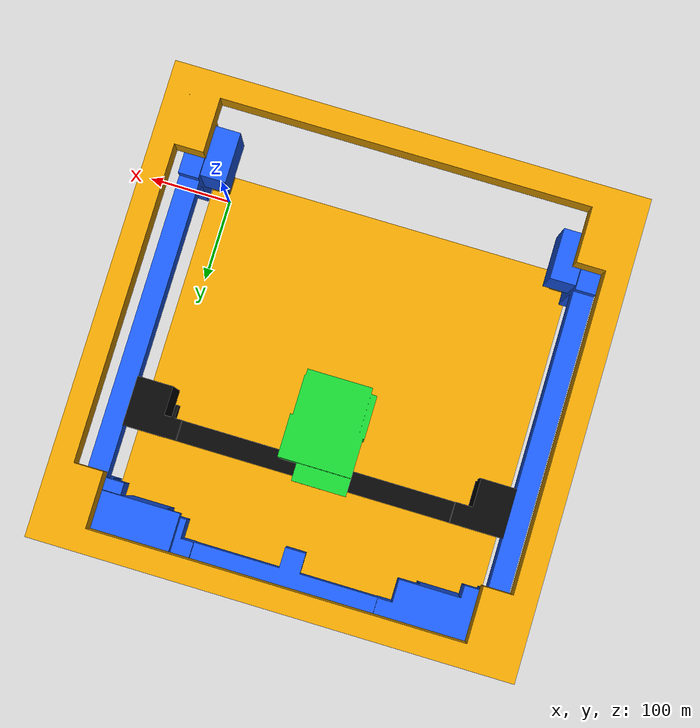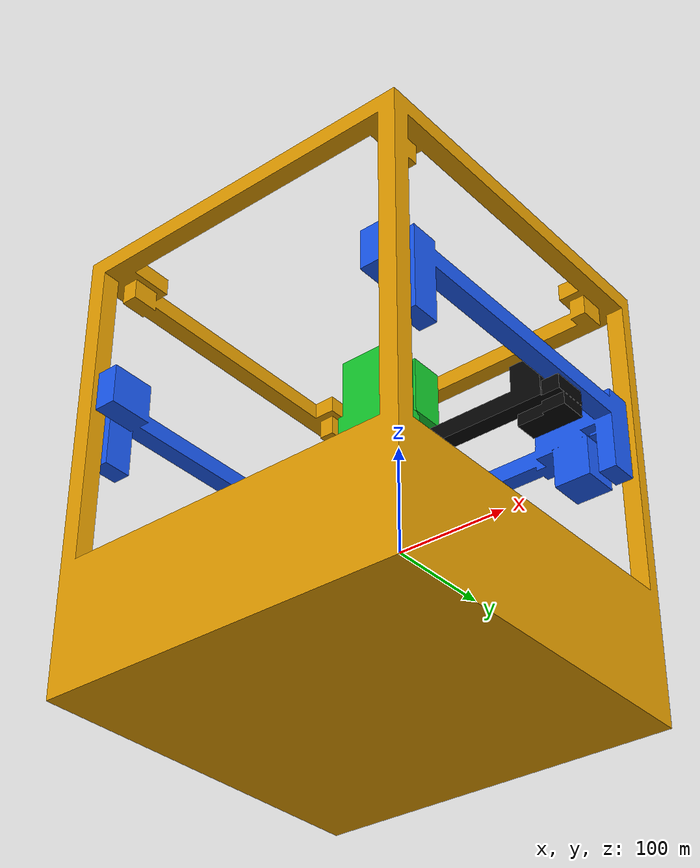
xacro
<?xml version="1.0"?>
<robot xmlns:xacro="http://www.ros.org/wiki/xacro" name="base_link_demo">
  <xacro:include filename="printer_common.urdf.xacro"/>
  <xacro:printer_links/>

  <!-- Temporary search limits only. FCL collision checks will determine actual limits. -->
  <xacro:printer_joint joint_name="base_to_z_gantry" joint_type="prismatic"
    parent="base_link" child="z_gantry_link" xyz="0.01 26.50 267.10"
    axis="0 0 1" lower="-1000" upper="1000"/>
  <xacro:printer_joint joint_name="z_gantry_to_x_beam_black" joint_type="prismatic"
    parent="z_gantry_link" child="x_beam_black_link" xyz="-389.70 228.38 40.56"
    axis="0 1 0" lower="-1000" upper="1000"/>
  <xacro:printer_joint joint_name="x_beam_black_to_toolhead" joint_type="prismatic"
    parent="x_beam_black_link" child="toolhead_link" xyz="218.67 -5.75 47.70"
    axis="1 0 0" lower="-1000" upper="1000"/>
</robot>

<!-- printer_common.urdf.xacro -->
<robot xmlns:xacro="http://www.ros.org/wiki/xacro" name="base_link_demo">

  <!-- Project convention: all geometry and joint coordinates use 1 unit = 1 mm. -->
  <xacro:property name="mesh_root" value="file:///home/wjd/Desktop/temporal_AI_workspace/ros2_ws_stl_demo/src/printer_description/meshes"/>

  <xacro:macro name="printer_links">
    <link name="base_link">
      <visual>
        <origin xyz="0 0 0" rpy="0 0 0"/>
        <geometry><mesh filename="${mesh_root}/base_link.stl" scale="1 1 1"/></geometry>
      </visual>
      <collision>
        <origin xyz="0 0 0" rpy="0 0 0"/>
        <geometry><mesh filename="${mesh_root}/base_link.stl" scale="1 1 1"/></geometry>
      </collision>
    </link>

    <link name="z_gantry_link">
      <visual>
        <origin xyz="0 0 0" rpy="0 0 0"/>
        <geometry><mesh filename="${mesh_root}/z_gantry.stl" scale="1 1 1"/></geometry>
        <material name="z_gantry_blue"><color rgba="0.10 0.35 0.95 1.0"/></material>
      </visual>
      <collision>
        <origin xyz="0 0 0" rpy="0 0 0"/>
        <geometry><mesh filename="${mesh_root}/z_gantry.stl" scale="1 1 1"/></geometry>
      </collision>
    </link>

    <link name="x_beam_black_link">
      <visual>
        <origin xyz="0 0 0" rpy="0 0 0"/>
        <geometry><mesh filename="${mesh_root}/x_beam.stl" scale="1 1 1"/></geometry>
        <material name="x_beam_black"><color rgba="0.02 0.02 0.02 1.0"/></material>
      </visual>
      <collision>
        <origin xyz="0 0 0" rpy="0 0 0"/>
        <geometry><mesh filename="${mesh_root}/x_beam.stl" scale="1 1 1"/></geometry>
      </collision>
    </link>

    <link name="toolhead_link">
      <visual>
        <origin xyz="0 0 0" rpy="0 0 0"/>
        <geometry><mesh filename="${mesh_root}/toolhead.stl" scale="1 1 1"/></geometry>
        <material name="toolhead_green"><color rgba="0.08 0.80 0.18 1.0"/></material>
      </visual>
      <collision>
        <origin xyz="0 0 0" rpy="0 0 0"/>
        <geometry><mesh filename="${mesh_root}/toolhead.stl" scale="1 1 1"/></geometry>
      </collision>
    </link>
  </xacro:macro>

  <xacro:macro name="printer_joint" params="joint_name joint_type parent child xyz axis:='0 0 0' lower:='-1000' upper:='1000'">
    <joint name="${joint_name}" type="${joint_type}">
      <parent link="${parent}"/>
      <child link="${child}"/>
      <origin xyz="${xyz}" rpy="0 0 0"/>
      <xacro:if value="${joint_type != 'fixed'}">
        <axis xyz="${axis}"/>
        <limit lower="${lower}" upper="${upper}" effort="1" velocity="1"/>
      </xacro:if>
    </joint>
  </xacro:macro>
</robot>
